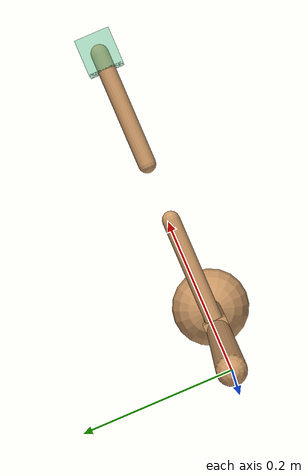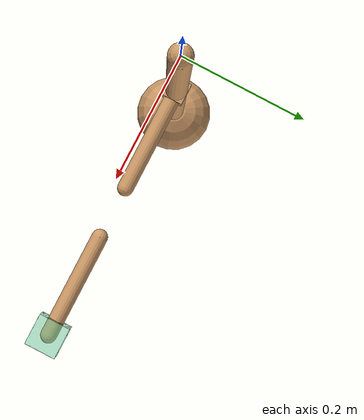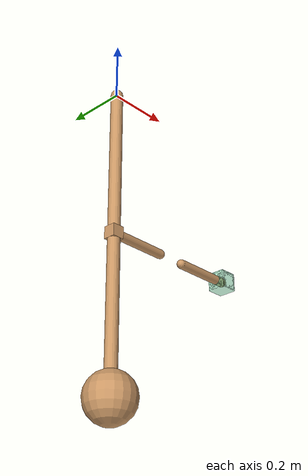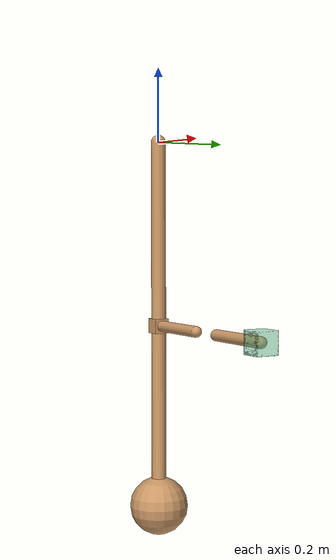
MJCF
<mujoco>
  <option integrator="RK4" timestep="0.0001">
    <flag contact="disable" gravity="disable" energy="enable"/>
  </option>

  <default>
    <geom rgba="0.8 0.6 .4 1"/>
    <site rgba="0.4 0.8 .6 .5"/>
  </default>

  <worldbody>
    <site name="connect" type="box" size=".03 .03 .03" pos=".5 0 -.5"/>
    <body name="link2" pos="0 0 0">
      <joint name="link2" axis="0 -1 0" stiffness="100" springref="90"/>
      <geom type="capsule" size=".02" fromto="0 0 0 0 0 -1"/>
      <geom name="query" type="sphere" size=".08" pos="0 0 -1"/>
      <body name="link3" pos="0 0 -.5" euler="0 90 0">
        <joint name="link3" axis="0 -1 0"/>
        <geom name="link3" type="box" size=".02 .02 .02" mass="1e-3"/>
        <geom type="capsule" size=".015" fromto="0 0 0 0 0 .2" mass="0"/>
        <body name="link4">
          <joint name="link4" type="slide" axis="0 0 1" armature="9"/>
          <geom type="capsule" size=".015" fromto="0 0 .3 0 0 .5" mass="0"/>
          <geom type="sphere" size=".001" pos="0 0 .5" mass=".1"/>
          <site name="link4" type="box" size=".03 .03 .03" pos="0 0 .5"/>
        </body>
      </body>
    </body>
  </worldbody>

  <equality>
    <connect site1="connect" site2="link4" solimp=".99 .99 .001" solref="0.0001 1"/>
  </equality>
</mujoco>
